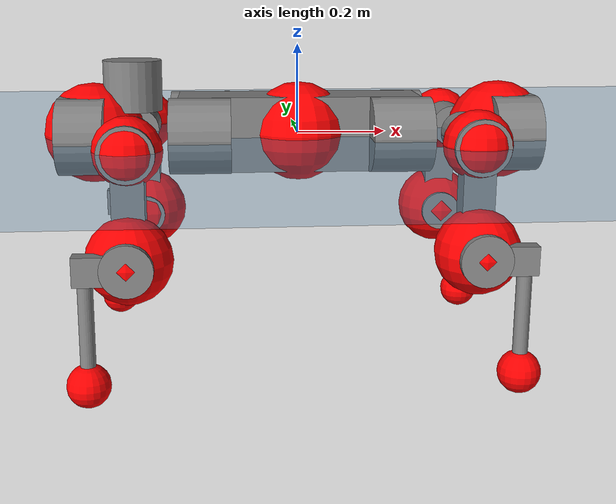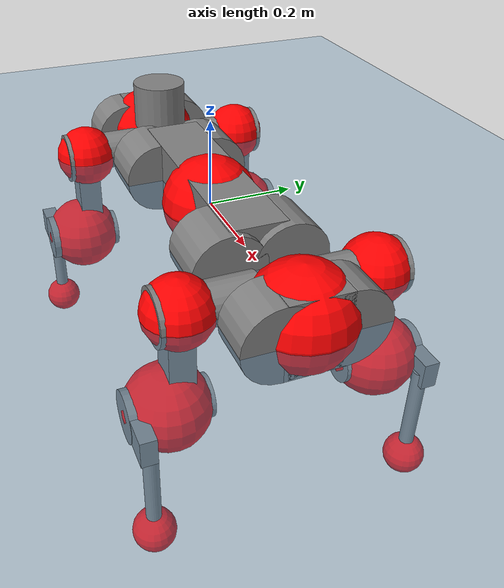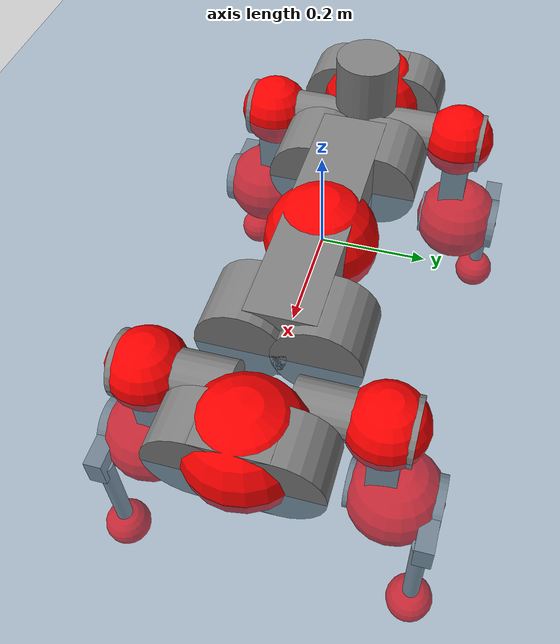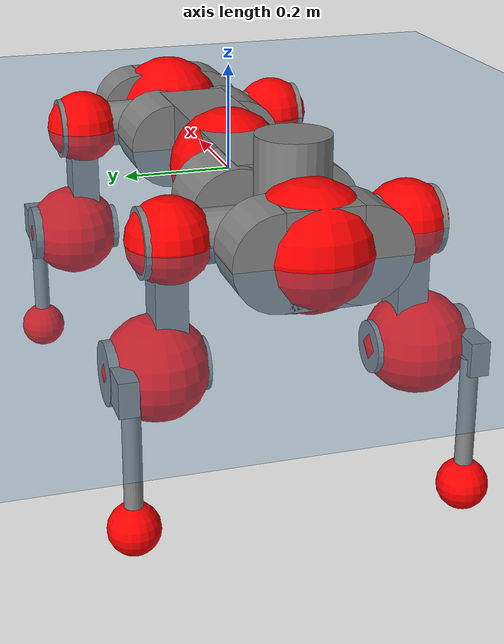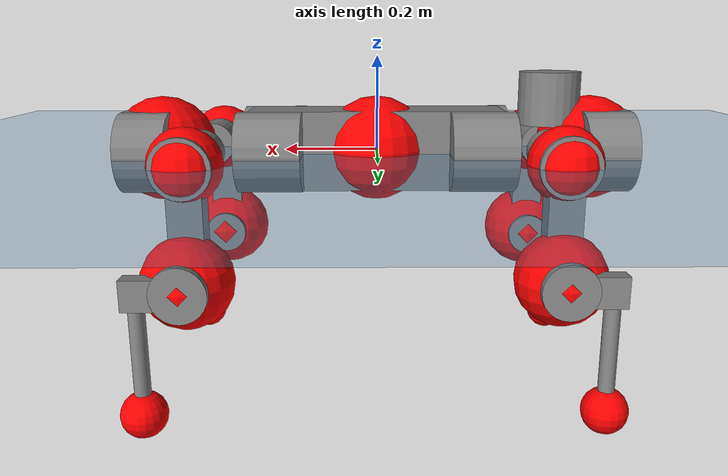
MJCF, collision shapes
<mujoco model="anymal_c">
  <compiler angle="radian" assetdir="assets" balanceinertia="true" inertiafromgeom="false"/>

  <option timestep="0.005" density="1.2" viscosity="2e-05"/>

  <size nkey="1"/>

  <visual>
    <quality shadowsize="8192"/>
    <map shadowclip="0.5"/>
  </visual>

  <default>
    <default class="/">
      <material specular="0" shininess="0.25"/>
      <geom contype="0" conaffinity="0" group="1" solref="-1000 -80"/>
      <site size="0.01 0.005 0.005" group="5"/>
      <general forcelimited="true" forcerange="-80 80" biastype="affine" gainprm="80" biasprm="0 -80 -2"/>
      <default class="anymal_c">
        <joint armature="0.01" damping="0.01" frictionloss="0.1"/>
        <default class="visual">
          <geom type="mesh" group="2"/>
          <default class="visual_zflip"/>
        </default>
        <default class="collision">
          <geom type="cylinder" group="3"/>
          <default class="foot">
            <geom size="0.03 0 0" type="sphere" condim="6" priority="1" friction="0.8 0.02 0.01" solimp="0.015 1 0.03"/>
          </default>
        </default>
      </default>
      <default class="reward_collision_sphere">
        <geom group="5" rgba="1 0 0 1"/>
      </default>
    </default>
  </default>

  <asset>
    <texture type="skybox" colorspace="auto" name="//unnamed_texture_0" builtin="gradient" rgb1="0.95 0.95 0.95" rgb2="0.95 0.95 0.95" width="100" height="600"/>
    <texture type="2d" colorspace="auto" name="texplane" builtin="checker" rgb1="0.345 0.575 0.748" rgb2="0.345 0.575 0.748" markrgb="1 1 1" width="512" height="512"/>
    <texture type="2d" colorspace="linear" name="base" file="base.png"/>
    <texture type="2d" colorspace="linear" name="top_shell" file="top_shell.png"/>
    <texture type="2d" colorspace="linear" name="bottom_shell" file="bottom_shell.png"/>
    <texture type="2d" colorspace="linear" name="remote" file="remote.png"/>
    <texture type="2d" colorspace="linear" name="hatch" file="hatch.png"/>
    <texture type="2d" colorspace="linear" name="handle" file="handle.png"/>
    <texture type="2d" colorspace="linear" name="face" file="face.png"/>
    <texture type="2d" colorspace="linear" name="battery" file="battery.png"/>
    <texture type="2d" colorspace="linear" name="lidar_cage" file="lidar_cage.png"/>
    <texture type="2d" colorspace="linear" name="depth_camera" file="depth_camera.png"/>
    <texture type="2d" colorspace="linear" name="wide_angle_camera" file="wide_angle_camera.png"/>
    <texture type="2d" colorspace="linear" name="lidar" file="lidar.png"/>
    <texture type="2d" colorspace="linear" name="drive" file="drive.png"/>
    <texture type="2d" colorspace="linear" name="hip_l" file="hip_l.png"/>
    <texture type="2d" colorspace="linear" name="shank_l" file="shank_l.png"/>
    <texture type="2d" colorspace="linear" name="foot" file="foot.png"/>
    <texture type="2d" colorspace="linear" name="thigh" file="thigh.png"/>
    <texture type="2d" colorspace="linear" name="shank_r" file="shank_r.png"/>
    <texture type="2d" colorspace="linear" name="hip_r" file="hip_r.png"/>
    <material name="MatPlane" class="/" texture="texplane" texuniform="true" texrepeat="2 2" specular="0.9" shininess="0.5"/>
    <material name="black_plastic" class="/" rgba="0.007 0.007 0.007 1"/>
    <material name="green" class="/" rgba="0.052 0.178 0.033 1"/>
    <material name="red" class="/" rgba="0.178 0.006 0.005 1"/>
    <material name="yellow" class="/" rgba="0.178 0.119 0.006 1"/>
    <material name="lwl" class="/" rgba="0.8 0.8 0.8 1"/>
    <material name="base" class="/" texture="base"/>
    <material name="top_shell" class="/" texture="top_shell"/>
    <material name="bottom_shell" class="/" texture="bottom_shell"/>
    <material name="hip_l" class="/" texture="hip_l"/>
    <material name="thigh" class="/" texture="thigh"/>
    <material name="shank_l" class="/" texture="shank_l"/>
    <material name="foot" class="/" texture="foot"/>
    <material name="hip_r" class="/" texture="hip_r"/>
    <material name="shank" class="/" texture="shank_r"/>
    <material name="hatch" class="/" texture="hatch"/>
    <material name="remote" class="/" texture="remote"/>
    <material name="handle" class="/" texture="handle"/>
    <material name="face" class="/" texture="face"/>
    <material name="depth_camera" class="/" texture="depth_camera"/>
    <material name="wide_angle_camera" class="/" texture="wide_angle_camera"/>
    <material name="battery" class="/" texture="battery"/>
    <material name="lidar_cage" class="/" texture="lidar_cage"/>
    <material name="lidar" class="/" texture="lidar"/>
    <material name="drive" class="/" texture="drive"/>
    <mesh name="base_0" class="/" file="base_0.obj"/>
    <mesh name="base_1" class="/" file="base_1.obj"/>
    <mesh name="base_2" class="/" file="base_2.obj"/>
    <mesh name="base_3" class="/" file="base_3.obj"/>
    <mesh name="base_4" class="/" file="base_4.obj"/>
    <mesh name="base_5" class="/" file="base_5.obj"/>
    <mesh name="top_shell" class="/" file="top_shell.obj"/>
    <mesh name="bottom_shell" class="/" file="bottom_shell.obj"/>
    <mesh name="remote" class="/" file="remote.obj"/>
    <mesh name="handle" class="/" file="handle.obj"/>
    <mesh name="face" class="/" file="face.obj"/>
    <mesh name="wide_angle_camera" class="/" file="wide_angle_camera.obj"/>
    <mesh name="depth_camera" class="/" file="depth_camera.obj"/>
    <mesh name="battery" class="/" file="battery.obj"/>
    <mesh name="lidar_cage" class="/" file="lidar_cage.obj"/>
    <mesh name="lidar" class="/" file="lidar.obj"/>
    <mesh name="drive" class="/" file="drive.obj"/>
    <mesh name="hip_l" class="/" file="hip_l.obj"/>
    <mesh name="thigh" class="/" file="thigh.obj"/>
    <mesh name="shank_l" class="/" file="shank_l.obj"/>
    <mesh name="foot" class="/" file="foot.obj"/>
    <mesh name="hip_r" class="/" file="hip_r.obj"/>
    <mesh name="hatch" class="/" file="hatch.obj"/>
    <mesh name="shank_r" class="/" file="shank_r.obj"/>
  </asset>

  <worldbody>
    <geom name="floor" class="/" size="100 100 0.125" type="plane" group="0" material="MatPlane"/>
    <light name="toplight_shadow" class="/" pos="0 0 5" dir="0.0990148 0.0990148 -0.990148" type="directional" ambient="0.04 0.04 0.04" diffuse="0.55 0.55 0.55" specular="0.12 0.12 0.12"/>
    <light name="toplight_fill" class="/" pos="0 0 5" dir="0.0990148 0.0990148 -0.990148" type="directional" castshadow="false" ambient="0.04 0.04 0.04" diffuse="0.3 0.3 0.3" specular="0.08 0.08 0.08"/>
    <body name="trunk" childclass="anymal_c" pos="0.00183565 -0.000859615 0.00385789" quat="0.999999 -0.00098523 0.00106359 -0.000282833">
      <inertial pos="0.00292651 -0.00147629 0.0332222" quat="0.492681 0.509896 0.501538 0.495713" mass="14.7547" diaginertia="0.662402 0.510982 0.0658335"/>
      <joint name="//unnamed_joint_0" type="free" armature="0" damping="0" frictionloss="0"/>
      <geom name="//unnamed_geom_1" class="visual" material="green" mesh="base_0"/>
      <geom name="//unnamed_geom_2" class="visual" material="yellow" mesh="base_1"/>
      <geom name="//unnamed_geom_3" class="visual" material="red" mesh="base_2"/>
      <geom name="//unnamed_geom_4" class="visual" material="black_plastic" mesh="base_3"/>
      <geom name="//unnamed_geom_5" class="visual" material="lwl" mesh="base_4"/>
      <geom name="//unnamed_geom_6" class="visual" material="base" mesh="base_5"/>
      <geom name="trunk_1" class="collision" size="0.27049 0.0652908 0.0839453" type="box"/>
      <geom name="trunk_2" class="collision" size="0.0839453 0.0676226" pos="0.222632 0.0684799 0" quat="0.707107 0 0.707107 0"/>
      <geom name="trunk_3" class="collision" size="0.0839453 0.0676226" pos="-0.222632 0.0684799 0" quat="0.707107 0 0.707107 0"/>
      <geom name="trunk_4" class="collision" size="0.0839453 0.0676226" pos="0.222632 -0.0684799 0" quat="0.707107 0 0.707107 0"/>
      <geom name="trunk_5" class="collision" size="0.0839453 0.0676226" pos="-0.222632 -0.0684799 0" quat="0.707107 0 0.707107 0"/>
      <geom name="//unnamed_geom_12" class="visual" material="top_shell" mesh="top_shell"/>
      <geom name="//unnamed_geom_13" class="visual" material="bottom_shell" mesh="bottom_shell"/>
      <geom name="//unnamed_geom_14" class="visual" material="remote" mesh="remote"/>
      <geom name="//unnamed_geom_15" class="visual" material="handle" mesh="handle"/>
      <geom name="//unnamed_geom_16" class="visual" pos="0.42428 0 0" quat="1 0 0 0" material="face" mesh="face"/>
      <geom name="trunk_6" class="collision" size="0.0512999 0.0652908 0.0839453" pos="0.480577 0 0" type="box"/>
      <geom name="//unnamed_geom_18" class="collision" size="0.0839453 0.0512999" pos="0.480577 0.0684799 0" quat="0.707107 0 0.707107 0"/>
      <geom name="//unnamed_geom_19" class="collision" size="0.0839453 0.0512999" pos="0.480577 -0.0684799 0" quat="0.707107 0 0.707107 0"/>
      <geom name="//unnamed_geom_20" class="visual" pos="0.472533 0 -0.0215245" quat="0.965926 0 0.258819 0" material="depth_camera" mesh="depth_camera"/>
      <geom name="//unnamed_geom_21" class="visual" pos="0.525104 0 0.0119206" material="wide_angle_camera" mesh="wide_angle_camera"/>
      <geom name="//unnamed_geom_22" class="visual_zflip" pos="-0.42428 0 0" quat="0 0 0 1" material="face" mesh="face"/>
      <geom name="trunk_7" class="collision" size="0.0512999 0.0652908 0.0839453" pos="-0.480577 0 0" quat="0 0 0 1" type="box"/>
      <geom name="//unnamed_geom_24" class="collision" size="0.0839453 0.0512999" pos="-0.480577 -0.0684799 0" quat="0 -0.707107 0 0.707107"/>
      <geom name="//unnamed_geom_25" class="collision" size="0.0839453 0.0512999" pos="-0.480577 0.0684799 0" quat="0 -0.707107 0 0.707107"/>
      <geom name="//unnamed_geom_26" class="visual" pos="-0.472533 0 -0.0215245" quat="0 -0.258819 0 0.965926" material="depth_camera" mesh="depth_camera"/>
      <geom name="//unnamed_geom_27" class="visual_zflip" pos="-0.525104 0 0.0119206" quat="0 0 0 1" material="wide_angle_camera" mesh="wide_angle_camera"/>
      <geom name="//unnamed_geom_28" class="visual" material="battery" mesh="battery"/>
      <geom name="//unnamed_geom_29" class="visual" pos="0 0.0741956 0.0248599" quat="0.683013 -0.183013 0.183013 0.683013" material="depth_camera" mesh="depth_camera"/>
      <geom name="//unnamed_geom_30" class="visual" pos="0 -0.0741956 0.0248599" quat="0.683013 0.183013 0.183013 -0.683013" material="depth_camera" mesh="depth_camera"/>
      <geom name="//unnamed_geom_31" class="visual" pos="-0.372588 0 0.058528" quat="1 0 0 0" material="lidar_cage" mesh="lidar_cage"/>
      <geom name="trunk_8" class="collision" size="0.0652908 0.0559636" pos="-0.372588 0 0.106306"/>
      <geom name="//unnamed_geom_33" class="visual" pos="-0.372588 -1.78011e-05 0.113234" quat="0.707107 0 0 -0.707107" material="lidar" mesh="lidar"/>
      <geom name="//unnamed_geom_34" class="visual" pos="0.306976 0.101677 3.13925e-09" quat="0.258819 0.965926 0 0" material="drive" mesh="drive"/>
      <geom name="//unnamed_geom_35" class="visual" pos="0.306976 -0.101677 -3.13925e-09" quat="0.258819 -0.965926 0 0" material="drive" mesh="drive"/>
      <geom name="//unnamed_geom_36" class="visual" pos="-0.306976 0.101677 -3.13925e-09" quat="0 0 0.965926 -0.258819" material="drive" mesh="drive"/>
      <geom name="//unnamed_geom_37" class="visual" pos="-0.306976 -0.101677 3.13925e-09" quat="0 0 -0.965926 -0.258819" material="drive" mesh="drive"/>
      <geom name="//unnamed_geom_38" class="visual" pos="0.118737 0 0.0581299" quat="1 0 0 0" material="hatch" mesh="hatch"/>
      <geom name="//unnamed_geom_39" class="reward_collision_sphere" size="0.111927"/>
      <geom name="//unnamed_geom_40" class="reward_collision_sphere" size="0.111927" pos="0.460617 0 0"/>
      <geom name="//unnamed_geom_41" class="reward_collision_sphere" size="0.111927" pos="-0.460617 0 0"/>
      <site name="imu" pos="0.266701 0.0128873 0.0414339" size="0.00932726"/>
      <camera name="track" pos="0 -1.95657 0" quat="0.707107 0.707107 0 0" mode="trackcom"/>
      <camera name="ego_camera" pos="0.460617 0 -0.031852" quat="-0.5 -0.5 0.5 0.5"/>
      <body name="LF_HIP" pos="0.307768 0.104948 0.000836427" quat="0.258928 0.965897 -5.2173e-05 -2.93142e-05">
        <inertial pos="0.0605015 -0.0156431 -0.00296491" quat="-0.112091 0.709475 -0.143873 0.680722" mass="2.22071" diaginertia="0.00645972 0.00420956 0.00103802"/>
        <joint name="LF_HAA" pos="0 0 0" axis="0.999949 0.00748046 -0.00680538" range="-0.703572 0.516167" armature="0.00940694" damping="0.00913765" frictionloss="0.0995934"/>
        <geom name="//unnamed_geom_42" class="visual" pos="0 0.000184668 -3.03316e-05" quat="0.258819 -0.965926 0 0" material="hip_l" mesh="hip_l"/>
        <geom name="//unnamed_geom_43" class="visual" pos="0.0613133 -0.0736329 -0.0411659" quat="0.183013 -0.683013 0.683013 0.183013" material="drive" mesh="drive"/>
        <geom name="//unnamed_geom_44" class="collision" size="0.0466363 0.0652908" pos="0.0613133 -0.0117001 -0.00549845" quat="-0.353553 -0.612372 0.612372 -0.353553"/>
        <body name="LF_THIGH" pos="0.0626367 -0.0706946 -0.0360114" quat="0.183142 -0.68291 0.683083 0.183007">
          <inertial pos="0.0318216 -0.000764893 -0.19602" quat="0.993051 -0.0168196 -0.0771612 0.0872531" mass="2.63511" diaginertia="0.0359129 0.0274141 0.00139414"/>
          <joint name="LF_HFE" pos="0 0 0" axis="1 0.000522849 -0.000241647" stiffness="7.0968e-05" range="-3.16652 3.13643" armature="0.00947618" damping="0.00709086" frictionloss="0.0932944"/>
          <geom name="//unnamed_geom_45" class="visual" pos="0.000901493 1.42054e-06 0" quat="0.707107 0 0 -0.707107" material="thigh" mesh="thigh"/>
          <geom name="//unnamed_geom_46" class="collision" size="0.0606272 0.037309" pos="0.0409438 0 0" quat="0.5 0.5 -0.5 -0.5"/>
          <geom name="//unnamed_geom_47" class="collision" size="0.0349772 0.0279818 0.131807" pos="0.0307078 0 -0.112528" quat="0.707107 0 0 -0.707107" type="box"/>
          <geom name="//unnamed_geom_48" class="visual" pos="0.102666 0 -0.226945" quat="1 0 0 0" material="drive" mesh="drive"/>
          <geom name="//unnamed_geom_49" class="collision" size="0.0466363 0.0652908" pos="0.0310149 0 -0.226945" quat="0.707107 0 0.707107 0"/>
          <geom name="//unnamed_geom_50" class="reward_collision_sphere" size="0.0746181" pos="0.0255899 0 0"/>
          <body name="LF_SHANK" pos="0.105944 -0.00186014 -0.22675" quat="1 0.000122098 -3.51302e-05 -4.09834e-05">
            <inertial pos="0.010511 -0.0566651 -0.0645156" quat="0.993026 -0.115228 0.000495311 -0.0249305" mass="0.472143" diaginertia="0.0118037 0.00842074 0.000362058"/>
            <joint name="LF_KFE" pos="0 0 0" axis="0.999999 0.000311823 -0.00130523" range="-3.04643 3.15887" armature="0.00829127" damping="0" frictionloss="0.0736157"/>
            <geom name="//unnamed_geom_51" class="visual" pos="0.000293957 0.00156739 0" quat="0.707107 0 0 -0.707107" material="shank_l" mesh="shank_l"/>
            <geom name="LF_kfe_act" class="collision" size="0.0559636 0.0186545" pos="0.0204719 0 0" quat="0.5 0.5 -0.5 -0.5"/>
            <geom name="//unnamed_geom_53" class="collision" size="0.0536308 0.0314795 0.0177218" pos="0.0204719 -0.0562504 0" quat="0.5 0.5 -0.5 -0.5" type="box"/>
            <geom name="//unnamed_geom_54" class="visual" pos="0.0133578 -0.085535 -0.269125" quat="0.382683 0 0 -0.92388" material="foot" mesh="foot"/>
            <geom name="LF_calf" class="collision" size="0.0163227 0.131749" pos="0.0133579 -0.0860401 -0.134563" quat="0.707107 0 0 -0.707107"/>
            <geom name="LF_foot" class="foot" size="0.0312312" pos="0.0133579 -0.0860401 -0.251209" quat="0.707107 0 0 -0.707107"/>
            <geom name="//unnamed_geom_57" class="reward_collision_sphere" size="0.0932726" pos="-0.0511797 0 0"/>
            <geom name="//unnamed_geom_58" class="reward_collision_sphere" size="0.0466363" pos="0.0133579 -0.0860401 -0.251209"/>
            <site name="LF_foot" class="foot" pos="0.0133579 -0.0860401 -0.251209" quat="0.707107 0 0 -0.707107" size="0.00932726"/>
          </body>
        </body>
      </body>
      <body name="RF_HIP" pos="0.306123 -0.10174 0.00211077" quat="0.25948 -0.965746 -0.000634633 0.00206089">
        <inertial pos="0.0558778 0.0153119 -0.00533368" quat="0.130143 0.684863 0.10928 0.708578" mass="2.07403" diaginertia="0.00655951 0.00429222 0.0010456"/>
        <joint name="RF_HAA" pos="0 0 0" axis="0.999989 -0.00390958 -0.00259225" stiffness="0.00356314" range="-0.416051 0.696465" armature="0.0104403" damping="0.00513197" frictionloss="0.0951902"/>
        <geom name="//unnamed_geom_59" class="visual" pos="0 -0.000184667 -3.03315e-05" quat="0.258819 0.965926 0 0" material="hip_r" mesh="hip_r"/>
        <geom name="//unnamed_geom_60" class="visual" pos="0.0613133 0.0736329 -0.0411659" quat="0.183013 0.683013 0.683013 -0.183013" material="drive" mesh="drive"/>
        <geom name="//unnamed_geom_61" class="collision" size="0.0466363 0.0652908" pos="0.0613133 0.0117001 -0.00549845" quat="-0.353553 0.612372 0.612372 0.353553"/>
        <body name="RF_THIGH" pos="0.0611635 0.0700005 -0.0357075" quat="0.183069 0.683354 0.682751 -0.182659">
          <inertial pos="0.0299029 -0.00096149 -0.197551" quat="0.992071 -0.0123742 -0.090922 0.0858829" mass="2.46391" diaginertia="0.0339885 0.027161 0.00137051"/>
          <joint name="RF_HFE" pos="0 0 0" axis="0.999973 0.00594983 -0.00440417" range="-3.13876 3.11843" armature="0.00833449" damping="0.0328226" frictionloss="0.0980451"/>
          <geom name="//unnamed_geom_62" class="visual" pos="0.000901493 1.42054e-06 0" quat="0.707107 0 0 -0.707107" material="thigh" mesh="thigh"/>
          <geom name="//unnamed_geom_63" class="collision" size="0.0606272 0.037309" pos="0.0409438 0 0" quat="0.5 0.5 0.5 0.5"/>
          <geom name="//unnamed_geom_64" class="collision" size="0.0349772 0.0279818 0.131807" pos="0.0307078 0 -0.112528" quat="0.707107 0 0 0.707107" type="box"/>
          <geom name="//unnamed_geom_65" class="visual" pos="0.102666 0 -0.226945" quat="1 0 0 0" material="drive" mesh="drive"/>
          <geom name="//unnamed_geom_66" class="collision" size="0.0466363 0.0652908" pos="0.0310149 0 -0.226945" quat="0.707107 0 0.707107 0"/>
          <geom name="//unnamed_geom_67" class="reward_collision_sphere" size="0.0746181" pos="0.0255899 0 0"/>
          <body name="RF_SHANK" pos="0.105777 0.00182319 -0.226015" quat="0.999999 -6.12697e-05 0.00076302 -0.000985514">
            <inertial pos="0.0033681 0.0626095 -0.0651314" quat="0.994428 0.102369 -0.0174382 0.0181409" mass="0.480458" diaginertia="0.0117099 0.00833841 0.000368308"/>
            <joint name="RF_KFE" pos="0 0 0" axis="0.999889 -0.00286127 0.0146492" range="-3.1236 3.09951" armature="0.00982309" damping="0.00707141" frictionloss="0.0856854"/>
            <geom name="//unnamed_geom_68" class="visual" pos="0.000293955 -0.00156739 0" quat="0.707107 0 0 0.707107" material="shank" mesh="shank_r"/>
            <geom name="RF_kfe_act" class="collision" size="0.0559636 0.0186545" pos="0.0204719 0 0" quat="0.5 0.5 0.5 0.5"/>
            <geom name="//unnamed_geom_70" class="collision" size="0.0536308 0.0314795 0.0177218" pos="0.0204719 0.0562504 0" quat="0.5 0.5 0.5 0.5" type="box"/>
            <geom name="//unnamed_geom_71" class="visual" pos="0.013358 0.085535 -0.269125" quat="0.382683 0 0 0.92388" material="foot" mesh="foot"/>
            <geom name="RF_calf" class="collision" size="0.0163227 0.131749" pos="0.0133579 0.0860401 -0.134563" quat="0.707107 0 0 0.707107"/>
            <geom name="RF_foot" class="foot" size="0.0305414" pos="0.0133579 0.0860401 -0.251209" quat="0.707107 0 0 0.707107"/>
            <geom name="//unnamed_geom_74" class="reward_collision_sphere" size="0.0932726" pos="-0.0511797 0 0"/>
            <geom name="//unnamed_geom_75" class="reward_collision_sphere" size="0.0466363" pos="0.0133579 0.0860401 -0.251209"/>
            <site name="RF_foot" class="foot" pos="0.0133579 0.0860401 -0.251209" quat="0.707107 0 0 0.707107" size="0.00932726"/>
          </body>
        </body>
      </body>
      <body name="LH_HIP" pos="-0.305406 0.101815 6.96321e-05" quat="0.0015603 -0.000181446 0.965988 -0.258583">
        <inertial pos="0.0555994 0.0174067 -0.00269381" quat="0.140828 0.685093 0.129741 0.702839" mass="2.18426" diaginertia="0.00636677 0.004473 0.001051"/>
        <joint name="LH_HAA" pos="0 0 0" axis="0.999955 0.00908086 0.00270402" stiffness="0.000739866" range="-0.450377 0.665436" armature="0.00853364" damping="0.00969777" frictionloss="0.0958557"/>
        <geom name="//unnamed_geom_76" class="visual" pos="0 -0.000184667 -3.03315e-05" quat="-0.258819 -0.965926 0 0" material="hip_r" mesh="hip_r"/>
        <geom name="//unnamed_geom_77" class="visual" pos="0.0613133 0.0736329 -0.0411659" quat="0.183013 0.683013 0.683013 -0.183013" material="drive" mesh="drive"/>
        <geom name="//unnamed_geom_78" class="collision" size="0.0466363 0.0652908" pos="0.0613133 0.0117001 -0.00549845" quat="-0.353553 0.612372 0.612372 0.353553"/>
        <body name="LH_THIGH" pos="0.0597471 0.0726243 -0.0389008" quat="0.182914 0.683047 0.683037 -0.182895">
          <inertial pos="0.0270119 0.00036662 -0.191172" quat="0.992787 -0.00500167 -0.0805445 0.0886662" mass="2.32439" diaginertia="0.0306828 0.0257562 0.00125665"/>
          <joint name="LH_HFE" pos="0 0 0" axis="0.999782 -0.0169427 -0.01224" stiffness="0.00367618" range="-3.14978 3.14509" armature="0.00917194" damping="0.0307281" frictionloss="0.102005"/>
          <geom name="//unnamed_geom_79" class="visual" pos="0.000901493 1.42054e-06 0" quat="0.707107 0 0 -0.707107" material="thigh" mesh="thigh"/>
          <geom name="//unnamed_geom_80" class="collision" size="0.0606272 0.037309" pos="0.0409438 0 0" quat="0.5 0.5 -0.5 -0.5"/>
          <geom name="//unnamed_geom_81" class="collision" size="0.0349772 0.0279818 0.131807" pos="0.0307078 0 -0.112528" quat="0.707107 0 0 -0.707107" type="box"/>
          <geom name="//unnamed_geom_82" class="visual" pos="0.102666 0 -0.226945" quat="1 0 0 0" material="drive" mesh="drive"/>
          <geom name="//unnamed_geom_83" class="collision" size="0.0466363 0.0652908" pos="0.0310149 0 -0.226945" quat="0.707107 0 0.707107 0"/>
          <geom name="//unnamed_geom_84" class="reward_collision_sphere" size="0.0746181" pos="0.0255899 0 0"/>
          <body name="LH_SHANK" pos="0.101884 -0.00174562 -0.225107" quat="1 -3.53861e-05 8.17655e-05 -0.00047178">
            <inertial pos="0.00915986 0.0598455 -0.0600824" quat="0.991716 0.123381 -0.00259165 0.0356231" mass="0.481255" diaginertia="0.0114219 0.00814678 0.000368364"/>
            <joint name="LH_KFE" pos="0 0 0" axis="0.999998 -0.00194627 0.000215954" range="-3.10467 3.23734" armature="0.00805194" damping="0.0281689" frictionloss="0.0960608"/>
            <geom name="//unnamed_geom_85" class="visual" pos="0.000293955 -0.00156739 0" quat="-0.707107 0 0 -0.707107" material="shank" mesh="shank_r"/>
            <geom name="LH_kfe_act" class="collision" size="0.0559636 0.0186545" pos="0.0204719 0 0" quat="0.5 0.5 -0.5 -0.5"/>
            <geom name="//unnamed_geom_87" class="collision" size="0.0536308 0.0314795 0.0177218" pos="0.0204719 0.0562504 0" quat="0.5 0.5 -0.5 -0.5" type="box"/>
            <geom name="//unnamed_geom_88" class="visual" pos="0.013358 0.085535 -0.269125" quat="-0.382683 0 0 -0.92388" material="foot" mesh="foot"/>
            <geom name="LH_calf" class="collision" size="0.0163227 0.131749" pos="0.0133579 0.0860401 -0.134563" quat="0.707107 0 0 -0.707107"/>
            <geom name="LH_foot" class="foot" size="0.0300118" pos="0.0133579 0.0860401 -0.251209" quat="0.707107 0 0 -0.707107"/>
            <geom name="//unnamed_geom_91" class="reward_collision_sphere" size="0.0932726" pos="-0.0511797 0 0"/>
            <geom name="//unnamed_geom_92" class="reward_collision_sphere" size="0.0466363" pos="0.0133579 0.0860401 -0.251209"/>
            <site name="LH_foot" class="foot" pos="0.0133579 0.0860401 -0.251209" quat="0.707107 0 0 -0.707107" size="0.00932726"/>
          </body>
        </body>
      </body>
      <body name="RH_HIP" pos="-0.311682 -0.101525 -0.00242302" quat="-0.000258516 0.000152555 -0.966141 -0.258013">
        <inertial pos="0.05922 -0.0157928 -0.00705471" quat="-0.138793 0.713428 -0.1386 0.672716" mass="2.28121" diaginertia="0.00601139 0.00417318 0.00101947"/>
        <joint name="RH_HAA" pos="0 0 0" axis="0.999708 -0.0229064 0.00768504" range="-0.759172 0.48514" armature="0.0093704" damping="0.00736305" frictionloss="0.0716235"/>
        <geom name="//unnamed_geom_93" class="visual" pos="0 0.000184668 -3.03316e-05" quat="-0.258819 0.965926 0 0" material="hip_l" mesh="hip_l"/>
        <geom name="//unnamed_geom_94" class="visual" pos="0.0613133 -0.0736329 -0.0411659" quat="-0.183013 0.683013 -0.683013 -0.183013" material="drive" mesh="drive"/>
        <geom name="//unnamed_geom_95" class="collision" size="0.0466363 0.0652908" pos="0.0613133 -0.0117001 -0.00549845" quat="0.353553 0.612372 -0.612372 0.353553"/>
        <body name="RH_THIGH" pos="0.0597283 -0.070994 -0.0325979" quat="-0.181936 0.68333 -0.68302 -0.182874">
          <inertial pos="0.0337982 -0.00140119 -0.193341" quat="0.993185 -0.0062679 -0.0810682 0.083501" mass="2.54545" diaginertia="0.0321431 0.0262013 0.0013389"/>
          <joint name="RH_HFE" pos="0 0 0" axis="0.999974 -0.00586058 -0.00422928" range="-3.15467 3.1592" armature="0.00888601" damping="0" frictionloss="0.0812139"/>
          <geom name="//unnamed_geom_96" class="visual" pos="0.000901493 1.42054e-06 0" quat="0.707107 0 0 -0.707107" material="thigh" mesh="thigh"/>
          <geom name="//unnamed_geom_97" class="collision" size="0.0606272 0.037309" pos="0.0409438 0 0" quat="0.5 0.5 0.5 0.5"/>
          <geom name="//unnamed_geom_98" class="collision" size="0.0349772 0.0279818 0.131807" pos="0.0307078 0 -0.112528" quat="0.707107 0 0 0.707107" type="box"/>
          <geom name="//unnamed_geom_99" class="visual" pos="0.102666 0 -0.226945" quat="1 0 0 0" material="drive" mesh="drive"/>
          <geom name="//unnamed_geom_100" class="collision" size="0.0466363 0.0652908" pos="0.0310149 0 -0.226945" quat="0.707107 0 0.707107 0"/>
          <geom name="//unnamed_geom_101" class="reward_collision_sphere" size="0.0746181" pos="0.0255899 0 0"/>
          <body name="RH_SHANK" pos="0.106294 -0.000456251 -0.225975" quat="0.999997 -0.000346758 0.000446743 0.00235981">
            <inertial pos="0.00825166 -0.0603831 -0.0643794" quat="0.993313 -0.114823 -0.00133918 -0.0119822" mass="0.467346" diaginertia="0.0112101 0.00849878 0.000375345"/>
            <joint name="RH_KFE" pos="0 0 0" axis="0.999748 0.00809153 -0.0209503" stiffness="0.0132309" range="-3.17579 3.0876" armature="0.00890683" damping="0.0177482" frictionloss="0.0811965"/>
            <geom name="//unnamed_geom_102" class="visual" pos="0.000293957 0.00156739 0" quat="0.707107 0 0 -0.707107" material="shank_l" mesh="shank_l"/>
            <geom name="RH_kfe_act" class="collision" size="0.0559636 0.0186545" pos="0.0204719 0 0" quat="0.5 0.5 0.5 0.5"/>
            <geom name="//unnamed_geom_104" class="collision" size="0.0536308 0.0314795 0.0177218" pos="0.0204719 -0.0562504 0" quat="0.5 0.5 0.5 0.5" type="box"/>
            <geom name="//unnamed_geom_105" class="visual" pos="0.0133578 -0.085535 -0.269125" quat="0.382683 0 0 -0.92388" material="foot" mesh="foot"/>
            <geom name="RH_calf" class="collision" size="0.0163227 0.131749" pos="0.0133579 -0.0860401 -0.134563" quat="0.707107 0 0 0.707107"/>
            <geom name="RH_foot" class="foot" size="0.0222609" pos="0.0133579 -0.0860401 -0.251209" quat="0.707107 0 0 0.707107"/>
            <geom name="//unnamed_geom_108" class="reward_collision_sphere" size="0.0932726" pos="-0.0511797 0 0"/>
            <geom name="//unnamed_geom_109" class="reward_collision_sphere" size="0.0466363" pos="0.0133579 -0.0860401 -0.251209"/>
            <site name="RH_foot" class="foot" pos="0.0133579 -0.0860401 -0.251209" quat="0.707107 0 0 0.707107" size="0.00932726"/>
          </body>
        </body>
      </body>
    </body>
  </worldbody>

  <contact>
    <pair class="/" geom1="floor" geom2="LF_foot" name="//unnamed_contact_0"/>
    <pair class="/" geom1="floor" geom2="RF_foot" name="//unnamed_contact_1"/>
    <pair class="/" geom1="floor" geom2="LH_foot" name="//unnamed_contact_2"/>
    <pair class="/" geom1="floor" geom2="RH_foot" name="//unnamed_contact_3"/>
  </contact>

  <actuator>
    <general name="LF_HAA" class="/" joint="LF_HAA" forcerange="-77.9 77.9" gainprm="77.4011" biasprm="0 -77.4011 -2.07174"/>
    <general name="LF_HFE" class="/" joint="LF_HFE" forcerange="-82.3269 82.3269" gainprm="77.4011" biasprm="0 -77.4011 -2.07174"/>
    <general name="LF_KFE" class="/" joint="LF_KFE" forcerange="-77.6466 77.6466" gainprm="77.4011" biasprm="0 -77.4011 -2.07174"/>
    <general name="RF_HAA" class="/" joint="RF_HAA" forcerange="-69.4034 69.4034" gainprm="77.4011" biasprm="0 -77.4011 -2.07174"/>
    <general name="RF_HFE" class="/" joint="RF_HFE" forcerange="-79.3557 79.3557" gainprm="77.4011" biasprm="0 -77.4011 -2.07174"/>
    <general name="RF_KFE" class="/" joint="RF_KFE" forcerange="-77.5779 77.5779" gainprm="77.4011" biasprm="0 -77.4011 -2.07174"/>
    <general name="LH_HAA" class="/" joint="LH_HAA" forcerange="-77.2015 77.2015" gainprm="77.4011" biasprm="0 -77.4011 -2.07174"/>
    <general name="LH_HFE" class="/" joint="LH_HFE" forcerange="-85.1451 85.1451" gainprm="77.4011" biasprm="0 -77.4011 -2.07174"/>
    <general name="LH_KFE" class="/" joint="LH_KFE" forcerange="-67.7246 67.7246" gainprm="77.4011" biasprm="0 -77.4011 -2.07174"/>
    <general name="RH_HAA" class="/" joint="RH_HAA" forcerange="-75.0882 75.0882" gainprm="77.4011" biasprm="0 -77.4011 -2.07174"/>
    <general name="RH_HFE" class="/" joint="RH_HFE" forcerange="-68.6823 68.6823" gainprm="77.4011" biasprm="0 -77.4011 -2.07174"/>
    <general name="RH_KFE" class="/" joint="RH_KFE" forcerange="-77.0812 77.0812" gainprm="77.4011" biasprm="0 -77.4011 -2.07174"/>
  </actuator>

  <sensor>
    <gyro site="imu" name="imu_angular_velocity"/>
    <velocimeter site="imu" name="imu_linear_velocity"/>
    <framelinvel objtype="site" objname="LF_foot" name="LF_foot_global_linear_velocity"/>
    <framelinvel objtype="site" objname="RF_foot" name="RF_foot_global_linear_velocity"/>
    <framelinvel objtype="site" objname="LH_foot" name="LH_foot_global_linear_velocity"/>
    <framelinvel objtype="site" objname="RH_foot" name="RH_foot_global_linear_velocity"/>
  </sensor>

  <keyframe>
    <key name="home" qpos="0 0 0.55 1 0 0 0 0 0.4 -0.8 0 -0.4 0.8 0 -0.4 0.8 0 0.4 -0.8"/>
  </keyframe>
</mujoco>
